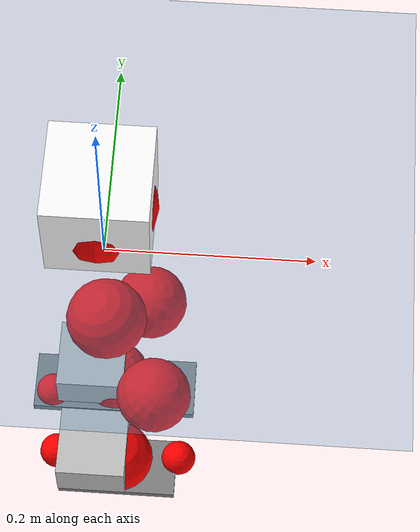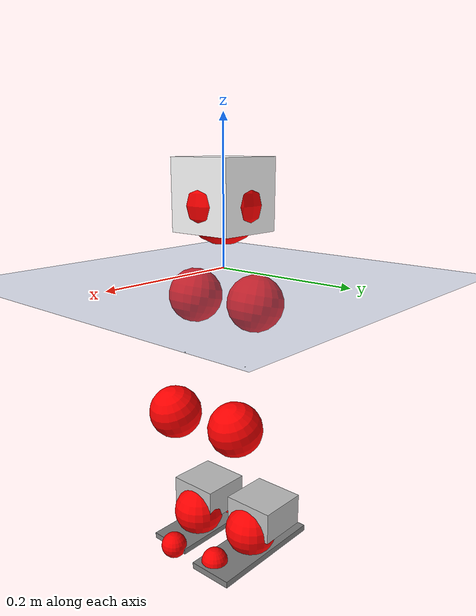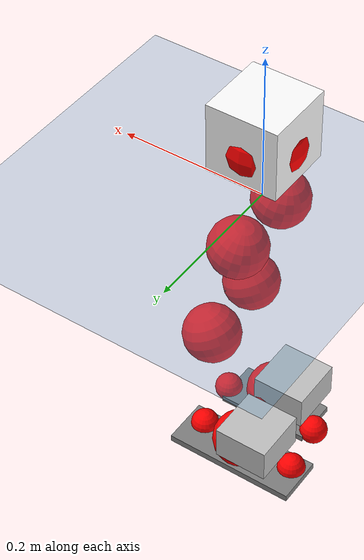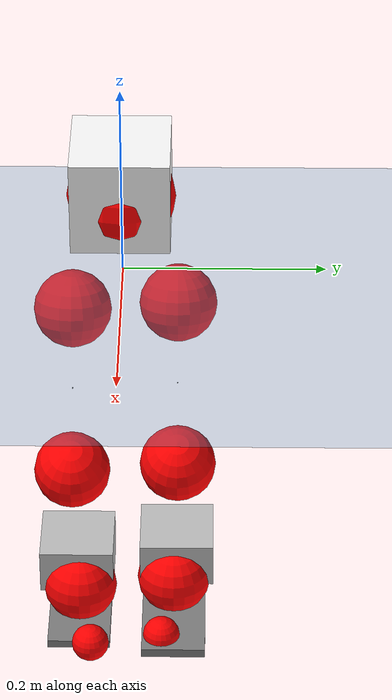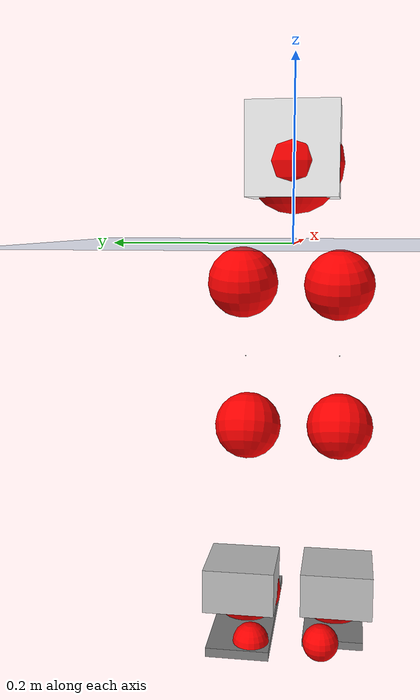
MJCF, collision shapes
<mujoco model="pi_12dof_release_v1">
  <compiler angle="radian" assetdir="assets" balanceinertia="true" inertiafromgeom="false"/>

  <option timestep="0.005" density="1.2" viscosity="2e-05"/>

  <size nkey="1"/>

  <visual>
    <quality shadowsize="8192"/>
    <map shadowclip="0.5"/>
  </visual>

  <default>
    <default class="/">
      <joint armature="0.01" damping="0.01" frictionloss="0.01"/>
      <geom contype="0" conaffinity="0" group="1" solref="-1000 -80"/>
      <site size="0.01 0.005 0.005" group="5"/>
      <general forcelimited="true" biastype="affine" gainprm="20" biasprm="0 -20 -0.5"/>
      <default class="foot">
        <geom size="0.0845 0.036 0.005" type="box" condim="6" group="4" priority="1" friction="0.9 0.2 0.2" solimp="0.015 1 0.005"/>
      </default>
      <default class="reward_collision_sphere">
        <geom group="5" rgba="1 0 0 1"/>
      </default>
    </default>
  </default>

  <asset>
    <texture type="skybox" colorspace="auto" name="//unnamed_texture_0" builtin="gradient" rgb1="0.95 0.95 0.95" rgb2="0.95 0.95 0.95" width="100" height="600"/>
    <texture type="2d" colorspace="auto" name="texplane" builtin="checker" rgb1="0.345 0.575 0.748" rgb2="0.345 0.575 0.748" markrgb="1 1 1" width="512" height="512"/>
    <material name="MatPlane" class="/" texture="texplane" texuniform="true" texrepeat="2 2" specular="0.9"/>
    <mesh name="baselink_1" class="/" file="baselink_1.STL"/>
    <mesh name="r_hip_pitch_link" class="/" file="r_hip_pitch_link.STL"/>
    <mesh name="r_hip_roll_link" class="/" file="r_hip_roll_link.STL"/>
    <mesh name="r_thigh_link" class="/" file="r_thigh_link.STL"/>
    <mesh name="r_calf_link" class="/" file="r_calf_link.STL"/>
    <mesh name="r_ankle_pitch_link" class="/" file="r_ankle_pitch_link.STL"/>
    <mesh name="r_ankle_roll_link" class="/" file="r_ankle_roll_link.STL"/>
    <mesh name="l_hip_pitch_link" class="/" file="l_hip_pitch_link.STL"/>
    <mesh name="l_hip_roll_link" class="/" file="l_hip_roll_link.STL"/>
    <mesh name="l_thigh_link" class="/" file="l_thigh_link.STL"/>
    <mesh name="l_calf_link" class="/" file="l_calf_link.STL"/>
    <mesh name="l_ankle_pitch_link" class="/" file="l_ankle_pitch_link.STL"/>
    <mesh name="l_ankle_roll_link" class="/" file="l_ankle_roll_link.STL"/>
  </asset>

  <worldbody>
    <geom name="floor" class="/" size="100 100 0.125" type="plane" group="0" material="MatPlane"/>
    <light name="toplight_shadow" class="/" pos="0 0 5" dir="0.0990148 0.0990148 -0.990148" type="directional" ambient="0.04 0.04 0.04" diffuse="0.55 0.55 0.55" specular="0.12 0.12 0.12"/>
    <light name="toplight_fill" class="/" pos="0 0 5" dir="0.0990148 0.0990148 -0.990148" type="directional" castshadow="false" ambient="0.04 0.04 0.04" diffuse="0.3 0.3 0.3" specular="0.08 0.08 0.08"/>
    <body name="trunk" pos="-0.00016781 -0.000471357 -0.00192321" quat="1 -6.47704e-05 8.16889e-05 2.94047e-05">
      <inertial pos="0.00120803 -0.000565829 0.0528697" quat="0.703744 0.0149457 0.0112874 0.710207" mass="1.99039" diaginertia="0.0119734 0.000892366 0.012161"/>
      <joint name="//unnamed_joint_0" type="free"/>
      <geom name="//unnamed_geom_1" class="/" type="mesh" density="0" rgba="1 1 1 1" mesh="baselink_1"/>
      <geom name="//unnamed_geom_2" class="/" size="0.0483529 0.0483529 0.0483529" pos="0 0 0.0990785" type="box" rgba="1 1 1 1"/>
      <geom name="//unnamed_geom_3" class="reward_collision_sphere" size="0.0531882" pos="0 0 0.0866937"/>
      <site name="imu" class="/" pos="0.00633629 -0.00339797 0.00172126" size="0.00967058"/>
      <camera name="track" class="/" pos="0 -1.25821 0" quat="0.707107 0.707107 0 0" mode="trackcom"/>
      <camera name="ego_camera" class="/" pos="0.0775189 0 0.222927" quat="-0.5 -0.5 0.5 0.5"/>
      <body name="r_hip_pitch_link" pos="0.00289956 -0.0161387 -0.0414318" quat="0.992182 -0.000830085 -0.124789 0.000995298">
        <inertial pos="0.00116432 -0.0382515 0.000593558" quat="-0.00906757 0.710657 -0.0307494 0.702807" mass="0.338633" diaginertia="0.000130045 9.86191e-06 0.000252598"/>
        <joint name="r_hip_pitch_joint" class="/" pos="0 0 0" axis="0.00351325 -0.999974 -0.00624828" range="-1.749 1.25672" armature="0.00831889" damping="0.015051" frictionloss="0.0084002"/>
        <geom name="//unnamed_geom_4" class="/" type="mesh" density="0" rgba="0.75294 0.75294 0.75294 1" mesh="r_hip_pitch_link"/>
        <geom name="//unnamed_geom_5" class="/" size="0.000483529 0.000483529 0.000483529" type="box" rgba="0.75294 0.75294 0.75294 1"/>
        <body name="r_hip_roll_link" pos="0.00165692 -0.0338096 -0.00207461" quat="1 8.57161e-05 -9.38392e-05 -0.000109408">
          <inertial pos="0.00168386 -0.000251231 -0.0754993" quat="0.70748 -0.0787508 -0.0934224 0.696091" mass="0.359139" diaginertia="0.000391681 2.72283e-05 0.000365792"/>
          <joint name="r_hip_roll_joint" class="/" pos="0 0 0" axis="-0.99998 0.0050189 -0.00393848" range="-0.122985 0.547541" armature="0.0081726" damping="0.00384977" frictionloss="0.0104703"/>
          <geom name="//unnamed_geom_6" class="/" type="mesh" density="0" rgba="0.75294 0.75294 0.75294 1" mesh="r_hip_roll_link"/>
          <geom name="//unnamed_geom_7" class="/" size="0.000483529 0.000483529 0.000483529" type="box" rgba="0.75294 0.75294 0.75294 1"/>
          <geom name="//unnamed_geom_8" class="reward_collision_sphere" size="0.0386823"/>
          <body name="r_thigh_link" pos="0.00139918 -0.00104658 -0.0847132" quat="1 0.000224563 -0.000275412 -0.000225226">
            <inertial pos="-0.000901966 -0.000618287 -0.0610531" quat="0.744263 0.667883 -0.0022217 0.000266491" mass="0.0997233" diaginertia="0.000142179 9.33273e-06 0.000159711"/>
            <joint name="r_thigh_joint" class="/" pos="0 0 0" axis="-0.00932104 -0.00882875 -0.999918" stiffness="0.00784071" range="-0.249725 0.637782" armature="0.00992289" damping="0.00865546" frictionloss="0.010175"/>
            <geom name="//unnamed_geom_9" class="/" type="mesh" density="0" rgba="0.75294 0.75294 0.75294 1" mesh="r_thigh_link"/>
            <geom name="//unnamed_geom_10" class="/" size="0.000483529 0.000483529 0.000483529" type="box" rgba="0.75294 0.75294 0.75294 1"/>
            <body name="r_calf_link" pos="-0.00160943 -0.00146008 -0.0895717" quat="0.947691 0.00011828 0.319189 -0.00065305">
              <inertial pos="3.0462e-05 -0.000128633 -0.0869902" quat="0.999964 -0.00474398 -0.00319369 0.00621" mass="0.737723" diaginertia="0.00412592 0.000366039 0.000525253"/>
              <joint name="r_calf_joint" class="/" pos="0 0 0" axis="-0.00612717 -0.999977 -0.00292768" range="-1.64206 0.699713" armature="0.00865804" damping="0.0181602" frictionloss="0.00835605"/>
              <geom name="//unnamed_geom_11" class="/" type="mesh" density="0" rgba="0.75294 0.75294 0.75294 1" mesh="r_calf_link"/>
              <geom name="//unnamed_geom_12" class="/" size="0.000483529 0.000483529 0.000483529" type="box" rgba="0.75294 0.75294 0.75294 1"/>
              <geom name="//unnamed_geom_13" class="reward_collision_sphere" size="0.0386823"/>
              <body name="r_ankle_pitch_link" pos="-0.00135817 -0.000856867 -0.175983" quat="0.980026 -6.076e-05 -0.198869 -7.84511e-05">
                <inertial pos="0.0048724 0.00327028 -3.41248e-05" quat="0.000501164 0.708097 -0.000456868 0.706115" mass="0.157094" diaginertia="0.000355935 2.20679e-05 0.000354587"/>
                <joint name="r_ankle_pitch_joint" class="/" pos="0 0 0" axis="-0.011224 -0.999935 0.00200464" range="-1.34149 0.532255" armature="0.00890641" damping="0.00493157" frictionloss="0.0095469"/>
                <geom name="//unnamed_geom_14" class="/" type="mesh" density="0" rgba="0.75294 0.75294 0.75294 1" mesh="r_ankle_pitch_link"/>
                <geom name="//unnamed_geom_15" class="/" size="0.0377152 0.0386823 0.0241764" type="box" rgba="0.75294 0.75294 0.75294 1"/>
                <body name="r_ankle_roll_link" pos="0.078946 0.00339262 0.00188139" quat="1 -2.042e-05 -5.52041e-05 4.81663e-05">
                  <inertial pos="-0.0244024 0.000734659 -0.0181589" quat="0.557714 0.425088 0.444885 0.557074" mass="0.461318" diaginertia="0.0013448 9.96248e-05 0.000813417"/>
                  <joint name="r_ankle_roll_joint" class="/" pos="0 0 0" axis="-0.999996 -0.00263339 -0.00122799" range="-0.19434 0.20878" armature="0.011018" damping="0.00411445" frictionloss="0.00995832"/>
                  <geom name="//unnamed_geom_16" class="/" type="mesh" density="0" rgba="0.75294 0.75294 0.75294 1" mesh="r_ankle_roll_link"/>
                  <geom name="//unnamed_geom_17" class="/" type="mesh" rgba="0.75294 0.75294 0.75294 1" mesh="r_ankle_roll_link"/>
                  <geom name="right_foot" class="foot" size="0.0655913 0.0326705 0.00430019" pos="-0.0527129 0 -0.0544932"/>
                  <geom name="//unnamed_geom_19" class="reward_collision_sphere" size="0.0386823" pos="-0.0516793 0 -0.0247696"/>
                  <geom name="//unnamed_geom_20" class="reward_collision_sphere" size="0.0193412" pos="0.0155038 0.0125821 -0.0495393"/>
                  <geom name="//unnamed_geom_21" class="reward_collision_sphere" size="0.0193412" pos="-0.12403 0.0125821 -0.0495393"/>
                  <site name="right_foot" class="foot" pos="-0.0527129 0 -0.0544932" size="0.00967058"/>
                </body>
              </body>
            </body>
          </body>
        </body>
      </body>
      <body name="l_hip_pitch_link" pos="0.000493532 0.0176474 -0.0392786" quat="0.992088 -1.68629e-06 -0.125544 0.000256639">
        <inertial pos="0.0039048 0.0339464 -0.000997027" quat="-0.0424444 0.69905 0.0231891 0.713435" mass="0.356153" diaginertia="0.000145152 1.01525e-05 0.000289637"/>
        <joint name="l_hip_pitch_joint" class="/" pos="0 0 0" axis="0.00685645 0.999976 0.00060762" range="-1.2505 1.78601" armature="0.00938649" damping="0.0165943" frictionloss="0.0090381"/>
        <geom name="//unnamed_geom_22" class="/" type="mesh" density="0" rgba="0.75294 0.75294 0.75294 1" mesh="l_hip_pitch_link"/>
        <geom name="//unnamed_geom_23" class="/" size="0.000483529 0.000483529 0.000483529" type="box" rgba="0.75294 0.75294 0.75294 1"/>
        <body name="l_hip_roll_link" pos="-0.00280064 0.0374661 -0.000145665" quat="1 -0.000123349 -7.87327e-05 0.000172562">
          <inertial pos="-0.00150802 0.00116808 -0.0771917" quat="0.698437 -0.0746623 -0.0770323 0.707586" mass="0.351795" diaginertia="0.000391454 2.64794e-05 0.000384962"/>
          <joint name="l_hip_roll_joint" class="/" pos="0 0 0" axis="-0.999989 -0.00378247 -0.00273434" stiffness="0.00402369" range="-0.522889 0.159345" armature="0.0100726" damping="0" frictionloss="0.00950469"/>
          <geom name="//unnamed_geom_24" class="/" type="mesh" density="0" rgba="0.75294 0.75294 0.75294 1" mesh="l_hip_roll_link"/>
          <geom name="//unnamed_geom_25" class="/" size="0.000483529 0.000483529 0.000483529" type="box" rgba="0.75294 0.75294 0.75294 1"/>
          <geom name="//unnamed_geom_26" class="reward_collision_sphere" size="0.0386823"/>
          <body name="l_thigh_link" pos="-0.0027668 -0.000811296 -0.086857" quat="0.999999 0.000800946 -6.3271e-05 0.00101876">
            <inertial pos="0.000617053 -0.00167801 -0.0579243" quat="0.679504 0.733628 -0.00799035 0.000586756" mass="0.101812" diaginertia="0.000145949 9.34756e-06 0.000171086"/>
            <joint name="l_thigh_joint" class="/" pos="0 0 0" axis="-0.000759411 0.0138023 -0.999904" range="-0.651155 0.342807" armature="0.0109408" damping="0.00422649" frictionloss="0.0107701"/>
            <geom name="//unnamed_geom_27" class="/" type="mesh" density="0" rgba="0.75294 0.75294 0.75294 1" mesh="l_thigh_link"/>
            <geom name="//unnamed_geom_28" class="/" size="0.000483529 0.000483529 0.000483529" type="box" rgba="0.75294 0.75294 0.75294 1"/>
            <body name="l_calf_link" pos="-0.00187681 -4.63134e-05 -0.0885427" quat="0.947648 0.000462863 0.319315 -0.000405125">
              <inertial pos="0.000519258 0.00245412 -0.0859125" quat="0.999929 0.0116042 -0.000121188 -0.00264993" mass="0.708738" diaginertia="0.00399862 0.000334154 0.000496504"/>
              <joint name="l_calf_joint" class="/" pos="0 0 0" axis="-0.00200927 0.999947 -0.0101347" range="-0.597458 1.69197" armature="0.00950918" damping="0.00796301" frictionloss="0.00954891"/>
              <geom name="//unnamed_geom_29" class="/" type="mesh" density="0" rgba="0.75294 0.75294 0.75294 1" mesh="l_calf_link"/>
              <geom name="//unnamed_geom_30" class="/" size="0.000483529 0.000483529 0.000483529" type="box" rgba="0.75294 0.75294 0.75294 1"/>
              <geom name="//unnamed_geom_31" class="reward_collision_sphere" size="0.0386823"/>
              <body name="l_ankle_pitch_link" pos="-0.000755716 -0.00271869 -0.173928" quat="0.980082 -0.000344466 -0.198595 -2.21649e-05">
                <inertial pos="0.00682475 -0.00287333 0.000844334" quat="-0.00147569 0.707831 0.00178387 0.706378" mass="0.164366" diaginertia="0.000367582 2.206e-05 0.000364343"/>
                <joint name="l_ankle_pitch_joint" class="/" pos="0 0 0" axis="-0.00232382 0.99997 -0.00733861" range="-0.491678 1.30773" armature="0.00972857" damping="0" frictionloss="0.00866375"/>
                <geom name="//unnamed_geom_32" class="/" type="mesh" density="0" rgba="0.75294 0.75294 0.75294 1" mesh="l_ankle_pitch_link"/>
                <geom name="//unnamed_geom_33" class="/" size="0.0377152 0.0386823 0.0241764" type="box" rgba="0.75294 0.75294 0.75294 1"/>
                <body name="l_ankle_roll_link" pos="0.0773212 -0.00275178 0.00167504" quat="0.999999 0.000114442 0.00109816 0.000612587">
                  <inertial pos="-0.0281323 -0.00094183 -0.018657" quat="0.559343 0.429103 0.43763 0.558109" mass="0.468831" diaginertia="0.00128636 0.00010235 0.000812166"/>
                  <joint name="l_ankle_roll_joint" class="/" pos="0 0 0" axis="-0.999999 -0.00118563 -0.000886106" range="-0.158632 0.152437" armature="0.00845827" damping="0.00929059" frictionloss="0.0100507"/>
                  <geom name="//unnamed_geom_34" class="/" type="mesh" density="0" rgba="0.75294 0.75294 0.75294 1" mesh="l_ankle_roll_link"/>
                  <geom name="//unnamed_geom_35" class="/" type="mesh" rgba="0.75294 0.75294 0.75294 1" mesh="l_ankle_roll_link"/>
                  <geom name="left_foot" class="foot" size="0.0929036 0.0333129 0.00486706" pos="-0.0527129 0 -0.0544932"/>
                  <geom name="//unnamed_geom_37" class="reward_collision_sphere" size="0.0386823" pos="-0.0516793 0 -0.0247696"/>
                  <geom name="//unnamed_geom_38" class="reward_collision_sphere" size="0.0193412" pos="0.0155038 -0.0125821 -0.0495393"/>
                  <geom name="//unnamed_geom_39" class="reward_collision_sphere" size="0.0193412" pos="-0.12403 -0.0125821 -0.0495393"/>
                  <site name="left_foot" class="foot" pos="-0.0527129 0 -0.0544932" size="0.00967058"/>
                </body>
              </body>
            </body>
          </body>
        </body>
      </body>
    </body>
  </worldbody>

  <contact>
    <pair class="/" geom1="floor" geom2="right_foot" name="//unnamed_contact_1"/>
    <pair class="/" geom1="floor" geom2="left_foot" name="//unnamed_contact_0"/>
  </contact>

  <actuator>
    <general name="r_hip_pitch_joint" class="/" joint="r_hip_pitch_joint" forcerange="-22.3955 22.3955" gainprm="19.0865" biasprm="0 -19.0865 -0.488128"/>
    <general name="r_hip_roll_joint" class="/" joint="r_hip_roll_joint" forcerange="-19.6799 19.6799" gainprm="19.0865" biasprm="0 -19.0865 -0.488128"/>
    <general name="r_thigh_joint" class="/" joint="r_thigh_joint" forcerange="-21.5192 21.5192" gainprm="19.0865" biasprm="0 -19.0865 -0.488128"/>
    <general name="r_calf_joint" class="/" joint="r_calf_joint" forcerange="-21.072 21.072" gainprm="19.0865" biasprm="0 -19.0865 -0.488128"/>
    <general name="r_ankle_pitch_joint" class="/" joint="r_ankle_pitch_joint" forcerange="-19.5426 19.5426" gainprm="19.0865" biasprm="0 -19.0865 -0.488128"/>
    <general name="r_ankle_roll_joint" class="/" joint="r_ankle_roll_joint" forcerange="-19.9593 19.9593" gainprm="19.0865" biasprm="0 -19.0865 -0.488128"/>
    <general name="l_hip_pitch_joint" class="/" joint="l_hip_pitch_joint" forcerange="-19.6893 19.6893" gainprm="19.0865" biasprm="0 -19.0865 -0.488128"/>
    <general name="l_hip_roll_joint" class="/" joint="l_hip_roll_joint" forcerange="-18.4181 18.4181" gainprm="19.0865" biasprm="0 -19.0865 -0.488128"/>
    <general name="l_thigh_joint" class="/" joint="l_thigh_joint" forcerange="-18.7601 18.7601" gainprm="19.0865" biasprm="0 -19.0865 -0.488128"/>
    <general name="l_calf_joint" class="/" joint="l_calf_joint" forcerange="-18.5359 18.5359" gainprm="19.0865" biasprm="0 -19.0865 -0.488128"/>
    <general name="l_ankle_pitch_joint" class="/" joint="l_ankle_pitch_joint" forcerange="-22.3712 22.3712" gainprm="19.0865" biasprm="0 -19.0865 -0.488128"/>
    <general name="l_ankle_roll_joint" class="/" joint="l_ankle_roll_joint" forcerange="-19.9438 19.9438" gainprm="19.0865" biasprm="0 -19.0865 -0.488128"/>
  </actuator>

  <sensor>
    <gyro site="imu" name="imu_angular_velocity"/>
    <velocimeter site="imu" name="imu_linear_velocity"/>
    <framelinvel objtype="site" objname="left_foot" name="left_foot_global_linear_velocity"/>
    <framelinvel objtype="site" objname="right_foot" name="right_foot_global_linear_velocity"/>
  </sensor>

  <keyframe>
    <key name="home" qpos="0 0 0.291 1 0 0 0 0.4 0 0 -0.8 0.4 0 -0.4 0 0 0.8 -0.4 0"/>
  </keyframe>
</mujoco>
